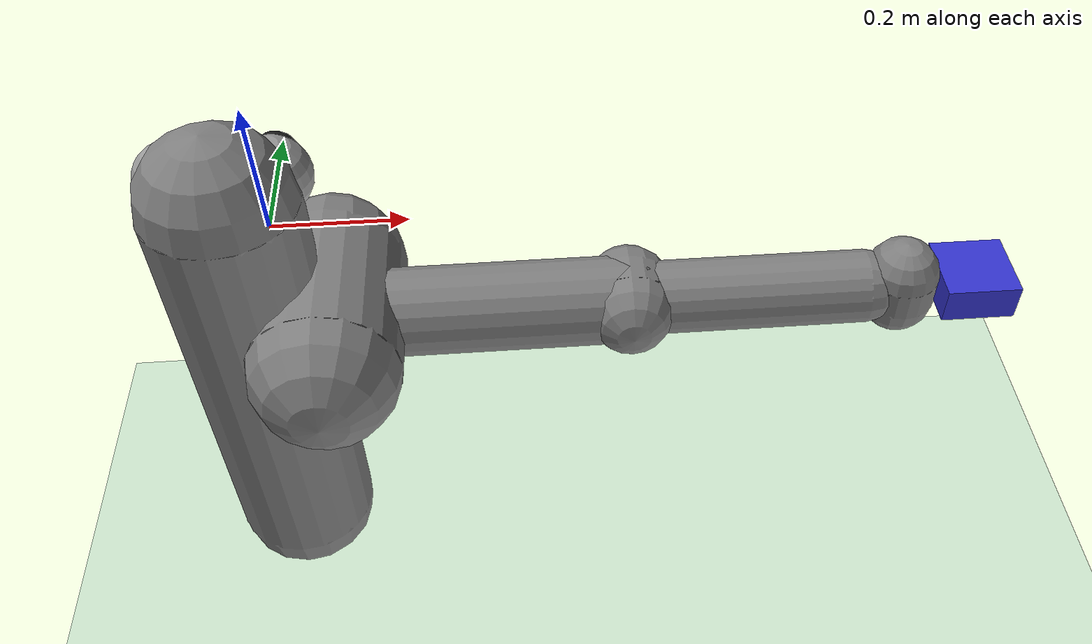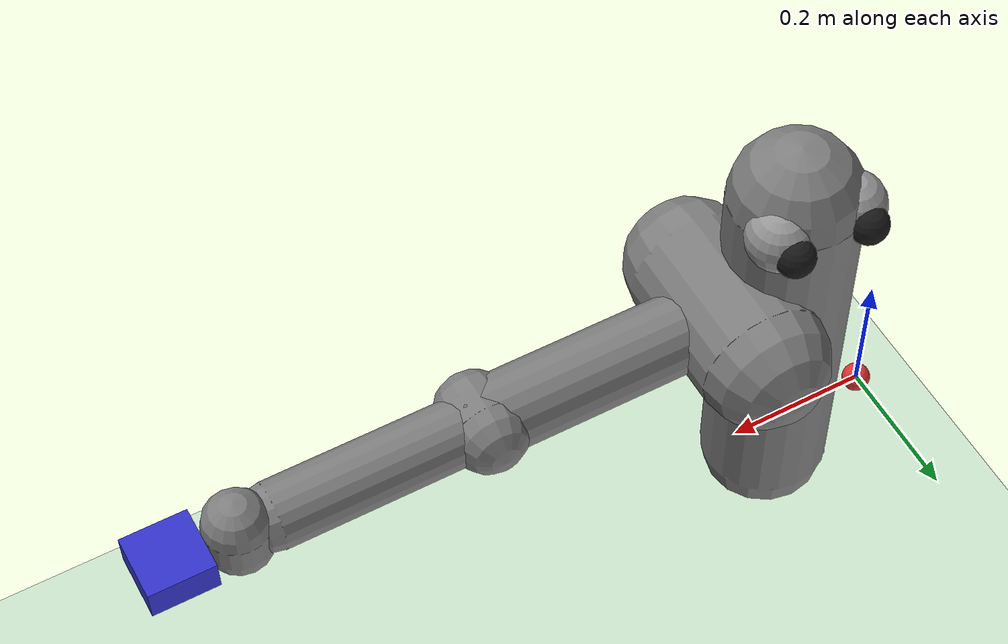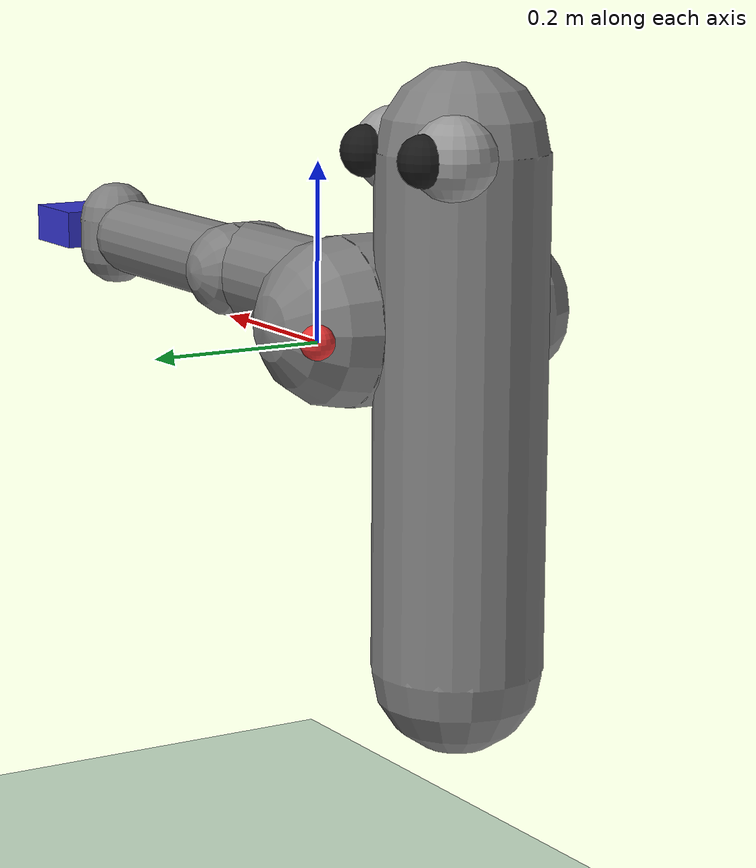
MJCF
<mujoco model="arm3d">

    <compiler inertiafromgeom="true" angle="radian" coordinate="local" />
    <option timestep="0.02" gravity="0 0 0" iterations="20" integrator="Euler" />
    <default>
        <joint armature="0.04" damping="1" limited="true" />
        <geom friction=".5 .1 .1" margin="0.002" condim="1" contype="0" conaffinity="0" />
    </default>
    <asset>
    <texture type="skybox" builtin="gradient" width="100" height="100" rgb1="1 1 1" rgb2="0 0 0" />
    <texture name="texgeom" type="cube" builtin="flat" mark="cross" width="127" height="1278" rgb1="0.8 0.6 0.4" rgb2="0.8 0.6 0.4" markrgb="1 1 1" random="0.01" />
    <texture name="texplane" type="2d" builtin="checker" rgb1="0 0 0" rgb2="0.8 0.8 0.8" width="100" height="100" />
    <material name='MatPlane' texture="texplane" shininess="1" texrepeat="60 60" specular="1"  reflectance="0.5" />
    <material name='geom' texture="texgeom" texuniform="true" />
    </asset>

    <worldbody>
        <light directional="true" cutoff="100" exponent="1" diffuse="1 1 1" specular=".1 .1 .1" pos="0 0 1.3" dir="-0 0 -1.3" />
        <geom name='floor' material="MatPlane" pos='0 0 -1' size='40 40 40' type='plane' conaffinity='0' contype="0" rgba='0.8 0.9 0.8 1' condim='3' />
        <body name="r_shoulder_pan_link" pos="0 -0.188 0">
            <geom name="e1" type="sphere" rgba="0.6 0.6 0.6 1" pos="-0.06 0.05 0.2" size="0.05" />
            <geom name="e2" type="sphere" rgba="0.6 0.6 0.6 1" pos=" 0.06 0.05 0.2" size="0.05" />
            <geom name="e1p" type="sphere" rgba="0.1 0.1 0.1 1" pos="-0.06 0.09 0.2" size="0.03" />
            <geom name="e2p" type="sphere" rgba="0.1 0.1 0.1 1" pos=" 0.06 0.09 0.2" size="0.03" />
            <geom name="sp" type="capsule" fromto="0 0 -0.4 0 0 0.2" size="0.1" contype="1" conaffinity="1"/>
            <joint name="r_shoulder_pan_joint" type="hinge" pos="0 0 0" axis="0 0 1" range="-2.2854 1.714602" damping="10.0" />

            <body name="r_shoulder_lift_link" pos="0.1 0 0">
                <geom name="sl" type="capsule" fromto="0 -0.1 0 0 0.1 0" size="0.1" contype="1" conaffinity="1"/>
                <joint name="r_shoulder_lift_joint" type="hinge" pos="0 0 0" axis="0 1 0" range="-0.5236 1.3963" damping="10.0" />

                <body name="r_upper_arm_roll_link" pos="0 0 0">
                    <geom name="uar" type="capsule" fromto="-0.1 0 0 0.1 0 0" size="0.02" />
                    <joint name="r_upper_arm_roll_joint" type="hinge" pos="0 0 0" axis="1 0 0" range="-3.9 0.8" damping="0.1" />

                    <body name="r_upper_arm_link" pos="0 0 0">
                        <geom name="ua" type="capsule" fromto="0 0 0 0.4 0 0" size="0.06" contype="1" conaffinity="1"/>

                        <body name="r_elbow_flex_link" pos="0.4 0 0">
                            <geom name="ef" type="capsule" fromto="0 -0.02 0 0.0 0.02 0" size="0.06" />
                            <joint name="r_elbow_flex_joint" type="hinge" pos="0 0 0" axis="0 1 0" range="-2.3213 0" damping="1.0" />

                            <body name="r_forearm_roll_link" pos="0 0 0">
                                <geom name="fr" type="capsule" fromto="-0.1 0 0 0.1 0 0" size="0.02" />
                                <joint name="r_forearm_roll_joint" type="hinge" pos="0 0 0" axis="1 0 0" range="-3.15 3.15" damping=".1" />

                                <body name="r_forearm_link" pos="0 0 0">
                                    <geom name="fa" type="capsule" fromto="0 0 0 0.321 0 0" size="0.05" contype="1" conaffinity="1"/>

                                    <body name="r_wrist_flex_link" pos="0.321 0 0">
                                        <geom name="wf" type="capsule" fromto="0 -0.02 0 0 0.02 0" size="0.01" />
                                        <joint name="r_wrist_flex_joint" type="hinge" pos="0 0 0" axis="0 1 0" range="-2.094 0" damping=".1" />

                                        <body name="r_wrist_roll_link" pos="0 0 0">
                                            <geom name="wr" type="capsule" fromto="-0.02 0 0 0.02 0 0" size="0.01" />
                                            <joint name="r_wrist_roll_joint" type="hinge" pos="0 0 0" axis="1 0 0" range="-3.15 3.15" damping="0.1" />

                                            <body name="r_gripper_palm_link" pos="0 0 0">
                                                <geom name="pl" type="capsule" fromto="0.05 0 -0.02 0.05 0 0.02" size="0.05" />

                                                <body name="object" pos="0.15 0 0">
                                                        <geom name="object" rgba="0.2 0.2 0.8 1" type="box" size="0.05 0.05 0.025" contype="1" conaffinity="1" />
                                                    </body>
                                                </body>
                                            </body>
                                        </body>
                                    </body>
                                </body>
                            </body>
                        </body>
                    </body>
                </body>
            </body>
        <body name="target" pos="0.0 0 0">
			<joint armature="0" axis="1 0 0" damping="0" limited="false" name="target_x" pos="0 0 0" ref=".1" stiffness="0" type="slide"/>
			<joint armature="0" axis="0 1 0" damping="0" limited="false" name="target_y" pos="0 0 0" ref="-.1" stiffness="0" type="slide"/>
            <joint armature="0" axis="0 0 1" damping="0" limited="false" name="target_z" pos="0 0 0" ref="-.1" stiffness="0" type="slide"/>
			<geom conaffinity="0" contype="0" name="target" pos="0 0 0" rgba="0.9 0.2 0.2 1" size=".02" type="sphere"/>
		</body>
    </worldbody>

    <actuator>
        <motor joint="r_shoulder_pan_joint" ctrlrange="-1.0 1.0" ctrllimited="true"/>
        <motor joint="r_shoulder_lift_joint" ctrlrange="-1.0 1.0" ctrllimited="true"/>
        <motor joint="r_upper_arm_roll_joint" ctrlrange="-1.0 1.0" ctrllimited="true"/>
        <motor joint="r_elbow_flex_joint" ctrlrange="-1.0 1.0" ctrllimited="true"/>
        <motor joint="r_forearm_roll_joint" ctrlrange="-1.0 1.0" ctrllimited="true"/>
        <motor joint="r_wrist_flex_joint" ctrlrange="-1.0 1.0" ctrllimited="true"/>
        <motor joint="r_wrist_roll_joint" ctrlrange="-1.0 1.0" ctrllimited="true"/>
    </actuator>

</mujoco>
